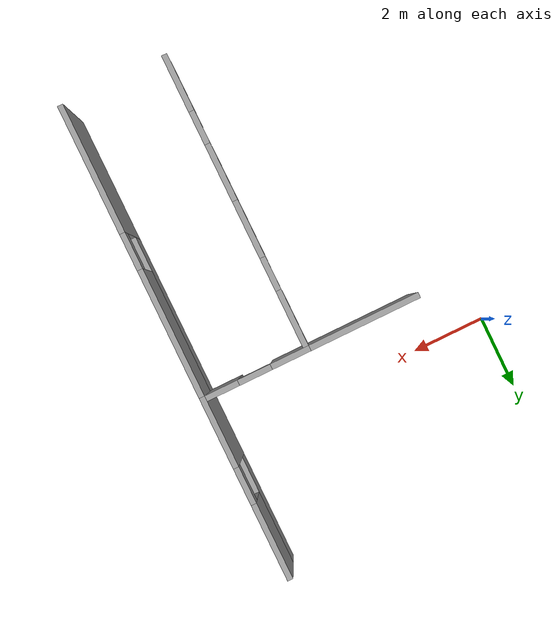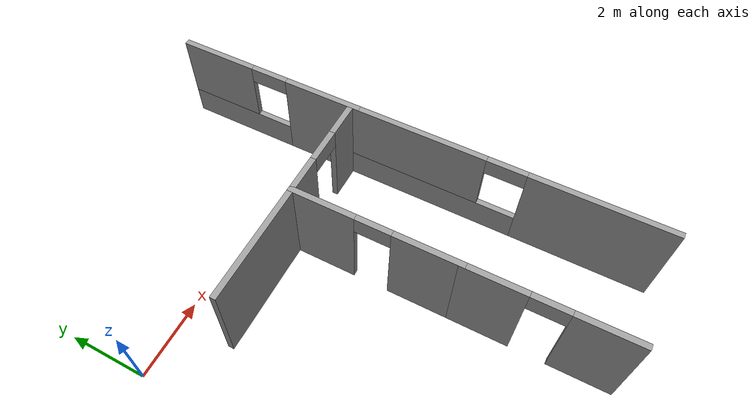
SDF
<sdf version="1.7">
 <model name="my_building_p4">
  <link name="Wall_37">
   <pose>4.57498 -7.45997 0 0 0 -1.57079</pose>
   <visual name="Wall_37_Visual_0">
    <pose>-1.22294 0 1.25 0 -0 0</pose>
    <geometry><box><size>1.55413 0.15 2.5</size></box></geometry>
    <material>
     <script><uri>file://media/materials/scripts/gazebo.material</uri><name>Gazebo/Grey</name></script>
     <ambient>1 1 1 1</ambient>
     <shader type="pixel"/>
    </material>
    <meta><layer>0</layer></meta>
   </visual>
   <visual name="Wall_37_Visual_2">
    <pose>0.004129 0 2.25 0 -0 0</pose>
    <geometry><box><size>0.9 0.15 0.5</size></box></geometry>
    <material>
     <script><uri>file://media/materials/scripts/gazebo.material</uri><name>Gazebo/Grey</name></script>
     <ambient>1 1 1 1</ambient>
     <shader type="pixel"/>
    </material>
    <meta><layer>0</layer></meta>
   </visual>
   <visual name="Wall_37_Visual_1">
    <pose>1.22707 0 1.25 0 -0 0</pose>
    <geometry><box><size>1.54587 0.15 2.5</size></box></geometry>
    <material>
     <script><uri>file://media/materials/scripts/gazebo.material</uri><name>Gazebo/Grey</name></script>
     <ambient>1 1 1 1</ambient>
     <shader type="pixel"/>
    </material>
    <meta><layer>0</layer></meta>
   </visual>
   <collision name="Wall_37_Collision_0">
    <pose>-1.22294 0 1.25 0 -0 0</pose>
    <geometry><box><size>1.55413 0.15 2.5</size></box></geometry>
    <surface>
     <friction>
      <ode><mu>1</mu><mu2>1</mu2><fdir1>0 0 0</fdir1><slip1>0</slip1><slip2>0</slip2></ode>
      <torsional>
       <coefficient>1</coefficient>
       <patch_radius>0</patch_radius>
       <surface_radius>0</surface_radius>
       <use_patch_radius>1</use_patch_radius>
       <ode><slip>0</slip></ode>
      </torsional>
     </friction>
     <bounce><restitution_coefficient>0</restitution_coefficient><threshold>1e+06</threshold></bounce>
     <contact>
      <collide_without_contact>0</collide_without_contact>
      <collide_without_contact_bitmask>1</collide_without_contact_bitmask>
      <collide_bitmask>1</collide_bitmask>
      <ode>
       <soft_cfm>0</soft_cfm>
       <soft_erp>0.2</soft_erp>
       <kp>1e+13</kp>
       <kd>1</kd>
       <max_vel>0.01</max_vel>
       <min_depth>0</min_depth>
      </ode>
      <bullet>
       <split_impulse>1</split_impulse>
       <split_impulse_penetration_threshold>-0.01</split_impulse_penetration_threshold>
       <soft_cfm>0</soft_cfm>
       <soft_erp>0.2</soft_erp>
       <kp>1e+13</kp>
       <kd>1</kd>
      </bullet>
     </contact>
    </surface>
   </collision>
   <collision name="Wall_37_Collision_1">
    <pose>1.22707 0 1.25 0 -0 0</pose>
    <geometry><box><size>1.54587 0.15 2.5</size></box></geometry>
    <surface>
     <friction>
      <ode><mu>1</mu><mu2>1</mu2><fdir1>0 0 0</fdir1><slip1>0</slip1><slip2>0</slip2></ode>
      <torsional>
       <coefficient>1</coefficient>
       <patch_radius>0</patch_radius>
       <surface_radius>0</surface_radius>
       <use_patch_radius>1</use_patch_radius>
       <ode><slip>0</slip></ode>
      </torsional>
     </friction>
     <bounce><restitution_coefficient>0</restitution_coefficient><threshold>1e+06</threshold></bounce>
     <contact>
      <collide_without_contact>0</collide_without_contact>
      <collide_without_contact_bitmask>1</collide_without_contact_bitmask>
      <collide_bitmask>1</collide_bitmask>
      <ode>
       <soft_cfm>0</soft_cfm>
       <soft_erp>0.2</soft_erp>
       <kp>1e+13</kp>
       <kd>1</kd>
       <max_vel>0.01</max_vel>
       <min_depth>0</min_depth>
      </ode>
      <bullet>
       <split_impulse>1</split_impulse>
       <split_impulse_penetration_threshold>-0.01</split_impulse_penetration_threshold>
       <soft_cfm>0</soft_cfm>
       <soft_erp>0.2</soft_erp>
       <kp>1e+13</kp>
       <kd>1</kd>
      </bullet>
     </contact>
    </surface>
   </collision>
   <collision name="Wall_37_Collision_2">
    <pose>0.004129 0 2.25 0 -0 0</pose>
    <geometry><box><size>0.9 0.15 0.5</size></box></geometry>
    <surface>
     <friction>
      <ode><mu>1</mu><mu2>1</mu2><fdir1>0 0 0</fdir1><slip1>0</slip1><slip2>0</slip2></ode>
      <torsional>
       <coefficient>1</coefficient>
       <patch_radius>0</patch_radius>
       <surface_radius>0</surface_radius>
       <use_patch_radius>1</use_patch_radius>
       <ode><slip>0</slip></ode>
      </torsional>
     </friction>
     <bounce><restitution_coefficient>0</restitution_coefficient><threshold>1e+06</threshold></bounce>
     <contact>
      <collide_without_contact>0</collide_without_contact>
      <collide_without_contact_bitmask>1</collide_without_contact_bitmask>
      <collide_bitmask>1</collide_bitmask>
      <ode>
       <soft_cfm>0</soft_cfm>
       <soft_erp>0.2</soft_erp>
       <kp>1e+13</kp>
       <kd>1</kd>
       <max_vel>0.01</max_vel>
       <min_depth>0</min_depth>
      </ode>
      <bullet>
       <split_impulse>1</split_impulse>
       <split_impulse_penetration_threshold>-0.01</split_impulse_penetration_threshold>
       <soft_cfm>0</soft_cfm>
       <soft_erp>0.2</soft_erp>
       <kp>1e+13</kp>
       <kd>1</kd>
      </bullet>
     </contact>
    </surface>
   </collision>
  </link>
  <link name="Wall_39">
   <pose>7.425 -5.45992 0 0 -0 1.5708</pose>
   <visual name="Wall_39_Visual_3">
    <pose>0.00913 0 2.275 0 -0 0</pose>
    <geometry><box><size>1 0.15 0.45</size></box></geometry>
    <material>
     <script><uri>file://media/materials/scripts/gazebo.material</uri><name>Gazebo/Grey</name></script>
     <ambient>1 1 1 1</ambient>
     <shader type="pixel"/>
    </material>
    <meta><layer>0</layer></meta>
   </visual>
   <visual name="Wall_39_Visual_2">
    <pose>2.25456 0 1.65 0 -0 0</pose>
    <geometry><box><size>3.49087 0.15 1.7</size></box></geometry>
    <material>
     <script><uri>file://media/materials/scripts/gazebo.material</uri><name>Gazebo/Grey</name></script>
     <ambient>1 1 1 1</ambient>
     <shader type="pixel"/>
    </material>
    <meta><layer>0</layer></meta>
   </visual>
   <visual name="Wall_39_Visual_0">
    <pose>-2.24544 0 1.25 0 -0 0</pose>
    <geometry><box><size>3.50913 0.15 2.5</size></box></geometry>
    <material>
     <script><uri>file://media/materials/scripts/gazebo.material</uri><name>Gazebo/Grey</name></script>
     <ambient>1 1 1 1</ambient>
     <shader type="pixel"/>
    </material>
    <meta><layer>0</layer></meta>
   </visual>
   <visual name="Wall_39_Visual_1">
    <pose>1.75456 0 0.4 0 -0 0</pose>
    <geometry><box><size>4.49087 0.15 0.8</size></box></geometry>
    <material>
     <script><uri>file://media/materials/scripts/gazebo.material</uri><name>Gazebo/Grey</name></script>
     <ambient>1 1 1 1</ambient>
     <shader type="pixel"/>
    </material>
    <meta><layer>0</layer></meta>
   </visual>
   <collision name="Wall_39_Collision_1">
    <pose>1.75456 0 0.4 0 -0 0</pose>
    <geometry><box><size>4.49087 0.15 0.8</size></box></geometry>
    <surface>
     <friction>
      <ode><mu>1</mu><mu2>1</mu2><fdir1>0 0 0</fdir1><slip1>0</slip1><slip2>0</slip2></ode>
      <torsional>
       <coefficient>1</coefficient>
       <patch_radius>0</patch_radius>
       <surface_radius>0</surface_radius>
       <use_patch_radius>1</use_patch_radius>
       <ode><slip>0</slip></ode>
      </torsional>
     </friction>
     <bounce><restitution_coefficient>0</restitution_coefficient><threshold>1e+06</threshold></bounce>
     <contact>
      <collide_without_contact>0</collide_without_contact>
      <collide_without_contact_bitmask>1</collide_without_contact_bitmask>
      <collide_bitmask>1</collide_bitmask>
      <ode>
       <soft_cfm>0</soft_cfm>
       <soft_erp>0.2</soft_erp>
       <kp>1e+13</kp>
       <kd>1</kd>
       <max_vel>0.01</max_vel>
       <min_depth>0</min_depth>
      </ode>
      <bullet>
       <split_impulse>1</split_impulse>
       <split_impulse_penetration_threshold>-0.01</split_impulse_penetration_threshold>
       <soft_cfm>0</soft_cfm>
       <soft_erp>0.2</soft_erp>
       <kp>1e+13</kp>
       <kd>1</kd>
      </bullet>
     </contact>
    </surface>
   </collision>
   <collision name="Wall_39_Collision_0">
    <pose>-2.24544 0 1.25 0 -0 0</pose>
    <geometry><box><size>3.50913 0.15 2.5</size></box></geometry>
    <surface>
     <friction>
      <ode><mu>1</mu><mu2>1</mu2><fdir1>0 0 0</fdir1><slip1>0</slip1><slip2>0</slip2></ode>
      <torsional>
       <coefficient>1</coefficient>
       <patch_radius>0</patch_radius>
       <surface_radius>0</surface_radius>
       <use_patch_radius>1</use_patch_radius>
       <ode><slip>0</slip></ode>
      </torsional>
     </friction>
     <bounce><restitution_coefficient>0</restitution_coefficient><threshold>1e+06</threshold></bounce>
     <contact>
      <collide_without_contact>0</collide_without_contact>
      <collide_without_contact_bitmask>1</collide_without_contact_bitmask>
      <collide_bitmask>1</collide_bitmask>
      <ode>
       <soft_cfm>0</soft_cfm>
       <soft_erp>0.2</soft_erp>
       <kp>1e+13</kp>
       <kd>1</kd>
       <max_vel>0.01</max_vel>
       <min_depth>0</min_depth>
      </ode>
      <bullet>
       <split_impulse>1</split_impulse>
       <split_impulse_penetration_threshold>-0.01</split_impulse_penetration_threshold>
       <soft_cfm>0</soft_cfm>
       <soft_erp>0.2</soft_erp>
       <kp>1e+13</kp>
       <kd>1</kd>
      </bullet>
     </contact>
    </surface>
   </collision>
   <collision name="Wall_39_Collision_3">
    <pose>0.00913 0 2.275 0 -0 0</pose>
    <geometry><box><size>1 0.15 0.45</size></box></geometry>
    <surface>
     <friction>
      <ode><mu>1</mu><mu2>1</mu2><fdir1>0 0 0</fdir1><slip1>0</slip1><slip2>0</slip2></ode>
      <torsional>
       <coefficient>1</coefficient>
       <patch_radius>0</patch_radius>
       <surface_radius>0</surface_radius>
       <use_patch_radius>1</use_patch_radius>
       <ode><slip>0</slip></ode>
      </torsional>
     </friction>
     <bounce><restitution_coefficient>0</restitution_coefficient><threshold>1e+06</threshold></bounce>
     <contact>
      <collide_without_contact>0</collide_without_contact>
      <collide_without_contact_bitmask>1</collide_without_contact_bitmask>
      <collide_bitmask>1</collide_bitmask>
      <ode>
       <soft_cfm>0</soft_cfm>
       <soft_erp>0.2</soft_erp>
       <kp>1e+13</kp>
       <kd>1</kd>
       <max_vel>0.01</max_vel>
       <min_depth>0</min_depth>
      </ode>
      <bullet>
       <split_impulse>1</split_impulse>
       <split_impulse_penetration_threshold>-0.01</split_impulse_penetration_threshold>
       <soft_cfm>0</soft_cfm>
       <soft_erp>0.2</soft_erp>
       <kp>1e+13</kp>
       <kd>1</kd>
      </bullet>
     </contact>
    </surface>
   </collision>
   <collision name="Wall_39_Collision_2">
    <pose>2.25456 0 1.65 0 -0 0</pose>
    <geometry><box><size>3.49087 0.15 1.7</size></box></geometry>
    <surface>
     <friction>
      <ode><mu>1</mu><mu2>1</mu2><fdir1>0 0 0</fdir1><slip1>0</slip1><slip2>0</slip2></ode>
      <torsional>
       <coefficient>1</coefficient>
       <patch_radius>0</patch_radius>
       <surface_radius>0</surface_radius>
       <use_patch_radius>1</use_patch_radius>
       <ode><slip>0</slip></ode>
      </torsional>
     </friction>
     <bounce><restitution_coefficient>0</restitution_coefficient><threshold>1e+06</threshold></bounce>
     <contact>
      <collide_without_contact>0</collide_without_contact>
      <collide_without_contact_bitmask>1</collide_without_contact_bitmask>
      <collide_bitmask>1</collide_bitmask>
      <ode>
       <soft_cfm>0</soft_cfm>
       <soft_erp>0.2</soft_erp>
       <kp>1e+13</kp>
       <kd>1</kd>
       <max_vel>0.01</max_vel>
       <min_depth>0</min_depth>
      </ode>
      <bullet>
       <split_impulse>1</split_impulse>
       <split_impulse_penetration_threshold>-0.01</split_impulse_penetration_threshold>
       <soft_cfm>0</soft_cfm>
       <soft_erp>0.2</soft_erp>
       <kp>1e+13</kp>
       <kd>1</kd>
      </bullet>
     </contact>
    </surface>
   </collision>
  </link>
  <link name="Wall_40">
   <pose>7.425 0.965083 0 0 -0 1.5708</pose>
   <visual name="Wall_40_Visual_3">
    <pose>0.007391 0 2.275 0 -0 0</pose>
    <geometry><box><size>1 0.15 0.45</size></box></geometry>
    <material>
     <script><uri>file://media/materials/scripts/gazebo.material</uri><name>Gazebo/Grey</name></script>
     <ambient>1 1 1 1</ambient>
     <shader type="pixel"/>
    </material>
    <meta><layer>0</layer></meta>
   </visual>
   <visual name="Wall_40_Visual_0">
    <pose>-1.53381 0 1.25 0 -0 0</pose>
    <geometry><box><size>2.08239 0.15 2.5</size></box></geometry>
    <material>
     <script><uri>file://media/materials/scripts/gazebo.material</uri><name>Gazebo/Grey</name></script>
     <ambient>1 1 1 1</ambient>
     <shader type="pixel"/>
    </material>
    <meta><layer>0</layer></meta>
   </visual>
   <visual name="Wall_40_Visual_1">
    <pose>1.0412 0 0.4 0 -0 0</pose>
    <geometry><box><size>3.06761 0.15 0.8</size></box></geometry>
    <material>
     <script><uri>file://media/materials/scripts/gazebo.material</uri><name>Gazebo/Grey</name></script>
     <ambient>1 1 1 1</ambient>
     <shader type="pixel"/>
    </material>
    <meta><layer>0</layer></meta>
   </visual>
   <visual name="Wall_40_Visual_2">
    <pose>1.5412 0 1.65 0 -0 0</pose>
    <geometry><box><size>2.06761 0.15 1.7</size></box></geometry>
    <material>
     <script><uri>file://media/materials/scripts/gazebo.material</uri><name>Gazebo/Grey</name></script>
     <ambient>1 1 1 1</ambient>
     <shader type="pixel"/>
    </material>
    <meta><layer>0</layer></meta>
   </visual>
   <collision name="Wall_40_Collision_2">
    <pose>1.5412 0 1.65 0 -0 0</pose>
    <geometry><box><size>2.06761 0.15 1.7</size></box></geometry>
    <surface>
     <friction>
      <ode><mu>1</mu><mu2>1</mu2><fdir1>0 0 0</fdir1><slip1>0</slip1><slip2>0</slip2></ode>
      <torsional>
       <coefficient>1</coefficient>
       <patch_radius>0</patch_radius>
       <surface_radius>0</surface_radius>
       <use_patch_radius>1</use_patch_radius>
       <ode><slip>0</slip></ode>
      </torsional>
     </friction>
     <bounce><restitution_coefficient>0</restitution_coefficient><threshold>1e+06</threshold></bounce>
     <contact>
      <collide_without_contact>0</collide_without_contact>
      <collide_without_contact_bitmask>1</collide_without_contact_bitmask>
      <collide_bitmask>1</collide_bitmask>
      <ode>
       <soft_cfm>0</soft_cfm>
       <soft_erp>0.2</soft_erp>
       <kp>1e+13</kp>
       <kd>1</kd>
       <max_vel>0.01</max_vel>
       <min_depth>0</min_depth>
      </ode>
      <bullet>
       <split_impulse>1</split_impulse>
       <split_impulse_penetration_threshold>-0.01</split_impulse_penetration_threshold>
       <soft_cfm>0</soft_cfm>
       <soft_erp>0.2</soft_erp>
       <kp>1e+13</kp>
       <kd>1</kd>
      </bullet>
     </contact>
    </surface>
   </collision>
   <collision name="Wall_40_Collision_0">
    <pose>-1.53381 0 1.25 0 -0 0</pose>
    <geometry><box><size>2.08239 0.15 2.5</size></box></geometry>
    <surface>
     <friction>
      <ode><mu>1</mu><mu2>1</mu2><fdir1>0 0 0</fdir1><slip1>0</slip1><slip2>0</slip2></ode>
      <torsional>
       <coefficient>1</coefficient>
       <patch_radius>0</patch_radius>
       <surface_radius>0</surface_radius>
       <use_patch_radius>1</use_patch_radius>
       <ode><slip>0</slip></ode>
      </torsional>
     </friction>
     <bounce><restitution_coefficient>0</restitution_coefficient><threshold>1e+06</threshold></bounce>
     <contact>
      <collide_without_contact>0</collide_without_contact>
      <collide_without_contact_bitmask>1</collide_without_contact_bitmask>
      <collide_bitmask>1</collide_bitmask>
      <ode>
       <soft_cfm>0</soft_cfm>
       <soft_erp>0.2</soft_erp>
       <kp>1e+13</kp>
       <kd>1</kd>
       <max_vel>0.01</max_vel>
       <min_depth>0</min_depth>
      </ode>
      <bullet>
       <split_impulse>1</split_impulse>
       <split_impulse_penetration_threshold>-0.01</split_impulse_penetration_threshold>
       <soft_cfm>0</soft_cfm>
       <soft_erp>0.2</soft_erp>
       <kp>1e+13</kp>
       <kd>1</kd>
      </bullet>
     </contact>
    </surface>
   </collision>
   <collision name="Wall_40_Collision_3">
    <pose>0.007391 0 2.275 0 -0 0</pose>
    <geometry><box><size>1 0.15 0.45</size></box></geometry>
    <surface>
     <friction>
      <ode><mu>1</mu><mu2>1</mu2><fdir1>0 0 0</fdir1><slip1>0</slip1><slip2>0</slip2></ode>
      <torsional>
       <coefficient>1</coefficient>
       <patch_radius>0</patch_radius>
       <surface_radius>0</surface_radius>
       <use_patch_radius>1</use_patch_radius>
       <ode><slip>0</slip></ode>
      </torsional>
     </friction>
     <bounce><restitution_coefficient>0</restitution_coefficient><threshold>1e+06</threshold></bounce>
     <contact>
      <collide_without_contact>0</collide_without_contact>
      <collide_without_contact_bitmask>1</collide_without_contact_bitmask>
      <collide_bitmask>1</collide_bitmask>
      <ode>
       <soft_cfm>0</soft_cfm>
       <soft_erp>0.2</soft_erp>
       <kp>1e+13</kp>
       <kd>1</kd>
       <max_vel>0.01</max_vel>
       <min_depth>0</min_depth>
      </ode>
      <bullet>
       <split_impulse>1</split_impulse>
       <split_impulse_penetration_threshold>-0.01</split_impulse_penetration_threshold>
       <soft_cfm>0</soft_cfm>
       <soft_erp>0.2</soft_erp>
       <kp>1e+13</kp>
       <kd>1</kd>
      </bullet>
     </contact>
    </surface>
   </collision>
   <collision name="Wall_40_Collision_1">
    <pose>1.0412 0 0.4 0 -0 0</pose>
    <geometry><box><size>3.06761 0.15 0.8</size></box></geometry>
    <surface>
     <friction>
      <ode><mu>1</mu><mu2>1</mu2><fdir1>0 0 0</fdir1><slip1>0</slip1><slip2>0</slip2></ode>
      <torsional>
       <coefficient>1</coefficient>
       <patch_radius>0</patch_radius>
       <surface_radius>0</surface_radius>
       <use_patch_radius>1</use_patch_radius>
       <ode><slip>0</slip></ode>
      </torsional>
     </friction>
     <bounce><restitution_coefficient>0</restitution_coefficient><threshold>1e+06</threshold></bounce>
     <contact>
      <collide_without_contact>0</collide_without_contact>
      <collide_without_contact_bitmask>1</collide_without_contact_bitmask>
      <collide_bitmask>1</collide_bitmask>
      <ode>
       <soft_cfm>0</soft_cfm>
       <soft_erp>0.2</soft_erp>
       <kp>1e+13</kp>
       <kd>1</kd>
       <max_vel>0.01</max_vel>
       <min_depth>0</min_depth>
      </ode>
      <bullet>
       <split_impulse>1</split_impulse>
       <split_impulse_penetration_threshold>-0.01</split_impulse_penetration_threshold>
       <soft_cfm>0</soft_cfm>
       <soft_erp>0.2</soft_erp>
       <kp>1e+13</kp>
       <kd>1</kd>
      </bullet>
     </contact>
    </surface>
   </collision>
  </link>
  <link name="Wall_43">
   <pose>4.5 -1.38492 0 0 -0 0</pose>
   <inertial>
    <mass>1</mass>
    <inertia><ixx>1</ixx><ixy>0</ixy><ixz>0</ixz><iyy>1</iyy><iyz>0</iyz><izz>1</izz></inertia>
   </inertial>
   <visual name="Wall_43_Visual">
    <pose>-1.5 0 1.25 0 -0 0</pose>
    <geometry><box><size>3 0.15 2.5</size></box></geometry>
    <material>
     <script><uri>file://media/materials/scripts/gazebo.material</uri><name>Gazebo/Grey</name></script>
     <ambient>1 1 1 1</ambient>
     <shader type="pixel"><normal_map>__default__</normal_map></shader>
     <diffuse>0.7 0.7 0.7 1</diffuse>
     <specular>0.01 0.01 0.01 1</specular>
     <emissive>0 0 0 1</emissive>
    </material>
    <meta><layer>0</layer></meta>
   </visual>
   <collision name="Wall_43_Collision">
    <pose>-1.5 0 1.25 0 -0 0</pose>
    <geometry><box><size>3 0.15 2.5</size></box></geometry>
    <surface>
     <friction>
      <ode><mu>1</mu><mu2>1</mu2><fdir1>0 0 0</fdir1><slip1>0</slip1><slip2>0</slip2></ode>
      <torsional>
       <coefficient>1</coefficient>
       <patch_radius>0</patch_radius>
       <surface_radius>0</surface_radius>
       <use_patch_radius>1</use_patch_radius>
       <ode><slip>0</slip></ode>
      </torsional>
     </friction>
     <bounce><restitution_coefficient>0</restitution_coefficient><threshold>1e+06</threshold></bounce>
     <contact>
      <collide_without_contact>0</collide_without_contact>
      <collide_without_contact_bitmask>1</collide_without_contact_bitmask>
      <collide_bitmask>1</collide_bitmask>
      <ode>
       <soft_cfm>0</soft_cfm>
       <soft_erp>0.2</soft_erp>
       <kp>1e+13</kp>
       <kd>1</kd>
       <max_vel>0.01</max_vel>
       <min_depth>0</min_depth>
      </ode>
      <bullet>
       <split_impulse>1</split_impulse>
       <split_impulse_penetration_threshold>-0.01</split_impulse_penetration_threshold>
       <soft_cfm>0</soft_cfm>
       <soft_erp>0.2</soft_erp>
       <kp>1e+13</kp>
       <kd>1</kd>
      </bullet>
     </contact>
    </surface>
   </collision>
  </link>
  <link name="Wall_44">
   <pose>6 -1.38492 0 0 -0 3.14159</pose>
   <visual name="Wall_44_Visual_2">
    <pose>-0.006131 0 2.25 0 -0 0</pose>
    <geometry><box><size>0.9 0.15 0.5</size></box></geometry>
    <material>
     <script><uri>file://media/materials/scripts/gazebo.material</uri><name>Gazebo/Grey</name></script>
     <ambient>1 1 1 1</ambient>
     <shader type="pixel"/>
    </material>
    <meta><layer>0</layer></meta>
   </visual>
   <visual name="Wall_44_Visual_0">
    <pose>-0.978065 0 1.25 0 -0 0</pose>
    <geometry><box><size>1.04387 0.15 2.5</size></box></geometry>
    <material>
     <script><uri>file://media/materials/scripts/gazebo.material</uri><name>Gazebo/Grey</name></script>
     <ambient>1 1 1 1</ambient>
     <shader type="pixel"/>
    </material>
    <meta><layer>0</layer></meta>
   </visual>
   <visual name="Wall_44_Visual_1">
    <pose>0.971935 0 1.25 0 -0 0</pose>
    <geometry><box><size>1.05613 0.15 2.5</size></box></geometry>
    <material>
     <script><uri>file://media/materials/scripts/gazebo.material</uri><name>Gazebo/Grey</name></script>
     <ambient>1 1 1 1</ambient>
     <shader type="pixel"/>
    </material>
    <meta><layer>0</layer></meta>
   </visual>
   <collision name="Wall_44_Collision_1">
    <pose>0.971935 0 1.25 0 -0 0</pose>
    <geometry><box><size>1.05613 0.15 2.5</size></box></geometry>
    <surface>
     <friction>
      <ode><mu>1</mu><mu2>1</mu2><fdir1>0 0 0</fdir1><slip1>0</slip1><slip2>0</slip2></ode>
      <torsional>
       <coefficient>1</coefficient>
       <patch_radius>0</patch_radius>
       <surface_radius>0</surface_radius>
       <use_patch_radius>1</use_patch_radius>
       <ode><slip>0</slip></ode>
      </torsional>
     </friction>
     <bounce><restitution_coefficient>0</restitution_coefficient><threshold>1e+06</threshold></bounce>
     <contact>
      <collide_without_contact>0</collide_without_contact>
      <collide_without_contact_bitmask>1</collide_without_contact_bitmask>
      <collide_bitmask>1</collide_bitmask>
      <ode>
       <soft_cfm>0</soft_cfm>
       <soft_erp>0.2</soft_erp>
       <kp>1e+13</kp>
       <kd>1</kd>
       <max_vel>0.01</max_vel>
       <min_depth>0</min_depth>
      </ode>
      <bullet>
       <split_impulse>1</split_impulse>
       <split_impulse_penetration_threshold>-0.01</split_impulse_penetration_threshold>
       <soft_cfm>0</soft_cfm>
       <soft_erp>0.2</soft_erp>
       <kp>1e+13</kp>
       <kd>1</kd>
      </bullet>
     </contact>
    </surface>
   </collision>
   <collision name="Wall_44_Collision_0">
    <pose>-0.978065 0 1.25 0 -0 0</pose>
    <geometry><box><size>1.04387 0.15 2.5</size></box></geometry>
    <surface>
     <friction>
      <ode><mu>1</mu><mu2>1</mu2><fdir1>0 0 0</fdir1><slip1>0</slip1><slip2>0</slip2></ode>
      <torsional>
       <coefficient>1</coefficient>
       <patch_radius>0</patch_radius>
       <surface_radius>0</surface_radius>
       <use_patch_radius>1</use_patch_radius>
       <ode><slip>0</slip></ode>
      </torsional>
     </friction>
     <bounce><restitution_coefficient>0</restitution_coefficient><threshold>1e+06</threshold></bounce>
     <contact>
      <collide_without_contact>0</collide_without_contact>
      <collide_without_contact_bitmask>1</collide_without_contact_bitmask>
      <collide_bitmask>1</collide_bitmask>
      <ode>
       <soft_cfm>0</soft_cfm>
       <soft_erp>0.2</soft_erp>
       <kp>1e+13</kp>
       <kd>1</kd>
       <max_vel>0.01</max_vel>
       <min_depth>0</min_depth>
      </ode>
      <bullet>
       <split_impulse>1</split_impulse>
       <split_impulse_penetration_threshold>-0.01</split_impulse_penetration_threshold>
       <soft_cfm>0</soft_cfm>
       <soft_erp>0.2</soft_erp>
       <kp>1e+13</kp>
       <kd>1</kd>
      </bullet>
     </contact>
    </surface>
   </collision>
   <collision name="Wall_44_Collision_2">
    <pose>-0.006131 0 2.25 0 -0 0</pose>
    <geometry><box><size>0.9 0.15 0.5</size></box></geometry>
    <surface>
     <friction>
      <ode><mu>1</mu><mu2>1</mu2><fdir1>0 0 0</fdir1><slip1>0</slip1><slip2>0</slip2></ode>
      <torsional>
       <coefficient>1</coefficient>
       <patch_radius>0</patch_radius>
       <surface_radius>0</surface_radius>
       <use_patch_radius>1</use_patch_radius>
       <ode><slip>0</slip></ode>
      </torsional>
     </friction>
     <bounce><restitution_coefficient>0</restitution_coefficient><threshold>1e+06</threshold></bounce>
     <contact>
      <collide_without_contact>0</collide_without_contact>
      <collide_without_contact_bitmask>1</collide_without_contact_bitmask>
      <collide_bitmask>1</collide_bitmask>
      <ode>
       <soft_cfm>0</soft_cfm>
       <soft_erp>0.2</soft_erp>
       <kp>1e+13</kp>
       <kd>1</kd>
       <max_vel>0.01</max_vel>
       <min_depth>0</min_depth>
      </ode>
      <bullet>
       <split_impulse>1</split_impulse>
       <split_impulse_penetration_threshold>-0.01</split_impulse_penetration_threshold>
       <soft_cfm>0</soft_cfm>
       <soft_erp>0.2</soft_erp>
       <kp>1e+13</kp>
       <kd>1</kd>
      </bullet>
     </contact>
    </surface>
   </collision>
  </link>
  <link name="Wall_45">
   <pose>4.57498 -3.45997 0 0 0 -1.5708</pose>
   <visual name="Wall_45_Visual_2">
    <pose>-0.003218 0 2.25 0 -0 0</pose>
    <geometry><box><size>0.9 0.15 0.5</size></box></geometry>
    <material>
     <script><uri>file://media/materials/scripts/gazebo.material</uri><name>Gazebo/Grey</name></script>
     <ambient>1 1 1 1</ambient>
     <shader type="pixel"/>
    </material>
    <meta><layer>0</layer></meta>
   </visual>
   <visual name="Wall_45_Visual_1">
    <pose>1.29839 0 1.25 0 -0 0</pose>
    <geometry><box><size>1.70322 0.15 2.5</size></box></geometry>
    <material>
     <script><uri>file://media/materials/scripts/gazebo.material</uri><name>Gazebo/Grey</name></script>
     <ambient>1 1 1 1</ambient>
     <shader type="pixel"/>
    </material>
    <meta><layer>0</layer></meta>
   </visual>
   <visual name="Wall_45_Visual_0">
    <pose>-1.30161 0 1.25 0 -0 0</pose>
    <geometry><box><size>1.69678 0.15 2.5</size></box></geometry>
    <material>
     <script><uri>file://media/materials/scripts/gazebo.material</uri><name>Gazebo/Grey</name></script>
     <ambient>1 1 1 1</ambient>
     <shader type="pixel"/>
    </material>
    <meta><layer>0</layer></meta>
   </visual>
   <collision name="Wall_45_Collision_0">
    <pose>-1.30161 0 1.25 0 -0 0</pose>
    <geometry><box><size>1.69678 0.15 2.5</size></box></geometry>
    <surface>
     <friction>
      <ode><mu>1</mu><mu2>1</mu2><fdir1>0 0 0</fdir1><slip1>0</slip1><slip2>0</slip2></ode>
      <torsional>
       <coefficient>1</coefficient>
       <patch_radius>0</patch_radius>
       <surface_radius>0</surface_radius>
       <use_patch_radius>1</use_patch_radius>
       <ode><slip>0</slip></ode>
      </torsional>
     </friction>
     <bounce><restitution_coefficient>0</restitution_coefficient><threshold>1e+06</threshold></bounce>
     <contact>
      <collide_without_contact>0</collide_without_contact>
      <collide_without_contact_bitmask>1</collide_without_contact_bitmask>
      <collide_bitmask>1</collide_bitmask>
      <ode>
       <soft_cfm>0</soft_cfm>
       <soft_erp>0.2</soft_erp>
       <kp>1e+13</kp>
       <kd>1</kd>
       <max_vel>0.01</max_vel>
       <min_depth>0</min_depth>
      </ode>
      <bullet>
       <split_impulse>1</split_impulse>
       <split_impulse_penetration_threshold>-0.01</split_impulse_penetration_threshold>
       <soft_cfm>0</soft_cfm>
       <soft_erp>0.2</soft_erp>
       <kp>1e+13</kp>
       <kd>1</kd>
      </bullet>
     </contact>
    </surface>
   </collision>
   <collision name="Wall_45_Collision_2">
    <pose>-0.003218 0 2.25 0 -0 0</pose>
    <geometry><box><size>0.9 0.15 0.5</size></box></geometry>
    <surface>
     <friction>
      <ode><mu>1</mu><mu2>1</mu2><fdir1>0 0 0</fdir1><slip1>0</slip1><slip2>0</slip2></ode>
      <torsional>
       <coefficient>1</coefficient>
       <patch_radius>0</patch_radius>
       <surface_radius>0</surface_radius>
       <use_patch_radius>1</use_patch_radius>
       <ode><slip>0</slip></ode>
      </torsional>
     </friction>
     <bounce><restitution_coefficient>0</restitution_coefficient><threshold>1e+06</threshold></bounce>
     <contact>
      <collide_without_contact>0</collide_without_contact>
      <collide_without_contact_bitmask>1</collide_without_contact_bitmask>
      <collide_bitmask>1</collide_bitmask>
      <ode>
       <soft_cfm>0</soft_cfm>
       <soft_erp>0.2</soft_erp>
       <kp>1e+13</kp>
       <kd>1</kd>
       <max_vel>0.01</max_vel>
       <min_depth>0</min_depth>
      </ode>
      <bullet>
       <split_impulse>1</split_impulse>
       <split_impulse_penetration_threshold>-0.01</split_impulse_penetration_threshold>
       <soft_cfm>0</soft_cfm>
       <soft_erp>0.2</soft_erp>
       <kp>1e+13</kp>
       <kd>1</kd>
      </bullet>
     </contact>
    </surface>
   </collision>
   <collision name="Wall_45_Collision_1">
    <pose>1.29839 0 1.25 0 -0 0</pose>
    <geometry><box><size>1.70322 0.15 2.5</size></box></geometry>
    <surface>
     <friction>
      <ode><mu>1</mu><mu2>1</mu2><fdir1>0 0 0</fdir1><slip1>0</slip1><slip2>0</slip2></ode>
      <torsional>
       <coefficient>1</coefficient>
       <patch_radius>0</patch_radius>
       <surface_radius>0</surface_radius>
       <use_patch_radius>1</use_patch_radius>
       <ode><slip>0</slip></ode>
      </torsional>
     </friction>
     <bounce><restitution_coefficient>0</restitution_coefficient><threshold>1e+06</threshold></bounce>
     <contact>
      <collide_without_contact>0</collide_without_contact>
      <collide_without_contact_bitmask>1</collide_without_contact_bitmask>
      <collide_bitmask>1</collide_bitmask>
      <ode>
       <soft_cfm>0</soft_cfm>
       <soft_erp>0.2</soft_erp>
       <kp>1e+13</kp>
       <kd>1</kd>
       <max_vel>0.01</max_vel>
       <min_depth>0</min_depth>
      </ode>
      <bullet>
       <split_impulse>1</split_impulse>
       <split_impulse_penetration_threshold>-0.01</split_impulse_penetration_threshold>
       <soft_cfm>0</soft_cfm>
       <soft_erp>0.2</soft_erp>
       <kp>1e+13</kp>
       <kd>1</kd>
      </bullet>
     </contact>
    </surface>
   </collision>
  </link>
  <static>1</static>
 </model>
</sdf>
